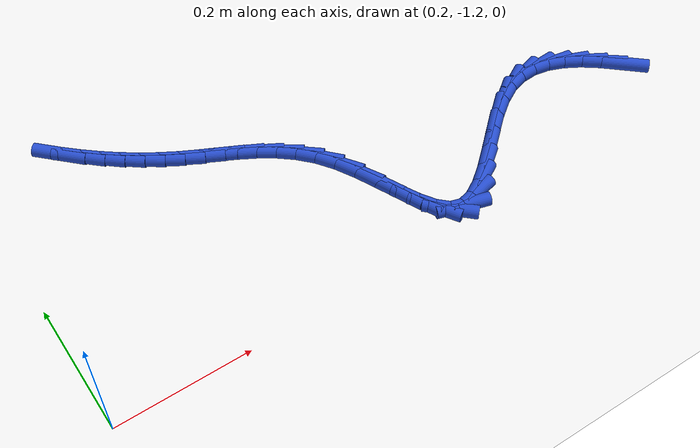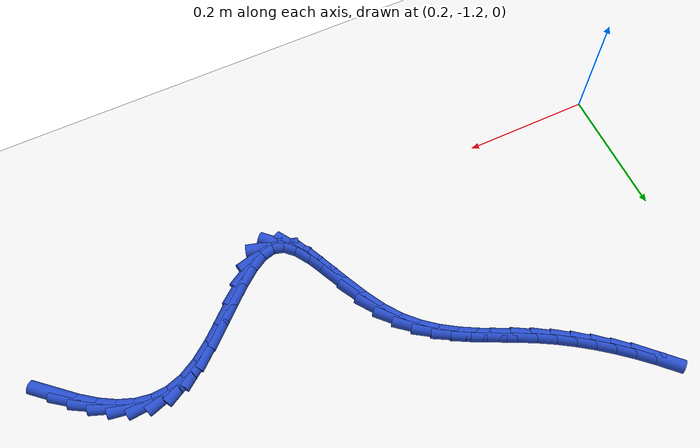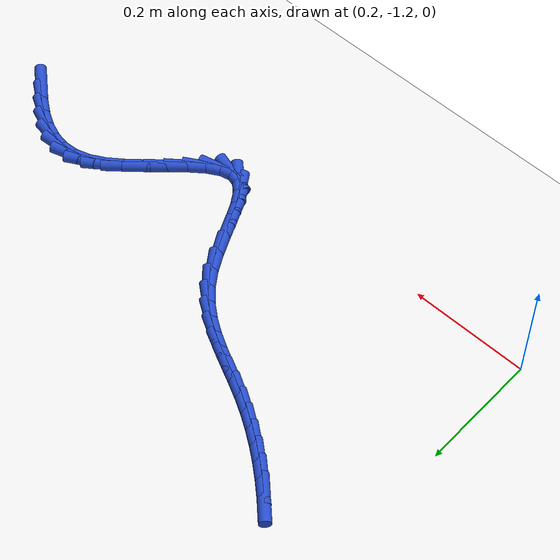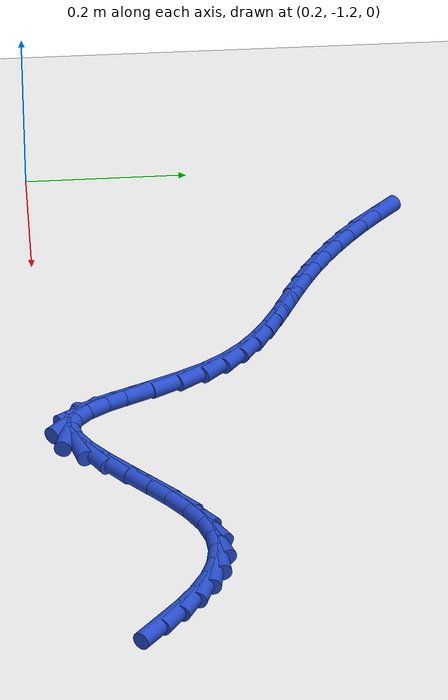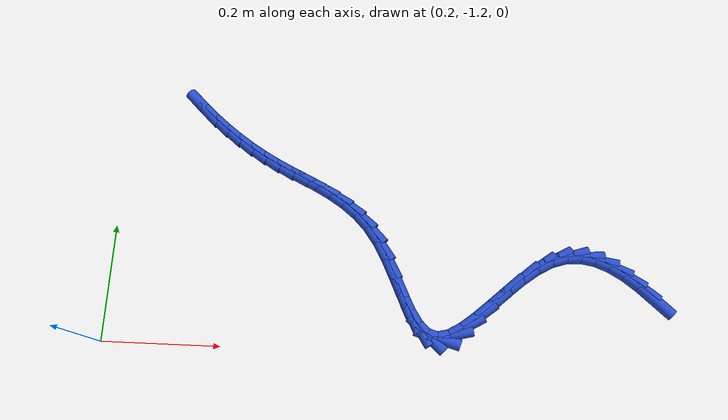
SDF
<sdf version="1.6">
 <world name="default">
  <model name="ground_plane">
   <static>1</static>
   <link name="link">
    <collision name="collision">
     <geometry><plane><normal>0 0 1</normal><size>100 100</size></plane></geometry>
     <surface><friction><ode><mu>100</mu><mu2>50</mu2></ode></friction></surface>
    </collision>
    <visual name="visual">
     <cast_shadows>0</cast_shadows>
     <geometry><plane><normal>0 0 1</normal><size>100 100</size></plane></geometry>
     <material>
      <script><uri>file://media/materials/scripts/gazebo.material</uri><name>Gazebo/WhiteGlow</name></script>
     </material>
    </visual>
   </link>
  </model>
  <model name="line">
   <link name="link_224">
    <pose>1.1205739657814175 -1.0905771799999395 0.01 0 1.57 -0.7173893721919093</pose>
    <collision name="collision">
     <geometry><cylinder><radius>0.01</radius><length>0.08</length></cylinder></geometry>
    </collision>
    <visual name="visual">
     <material>
      <script><name>Gazebo/Blue</name><uri>file://media/materials/scripts/gazebo.material</uri></script>
     </material>
     <geometry><cylinder><radius>0.01</radius><length>0.08</length></cylinder></geometry>
    </visual>
   </link>
   <link name="link_225">
    <pose>1.0965041822092247 -1.0695772664270893 0.01 0 1.57 -0.6337522375072615</pose>
    <collision name="collision">
     <geometry><cylinder><radius>0.01</radius><length>0.08</length></cylinder></geometry>
    </collision>
    <visual name="visual">
     <material>
      <script><name>Gazebo/Blue</name><uri>file://media/materials/scripts/gazebo.material</uri></script>
     </material>
     <geometry><cylinder><radius>0.01</radius><length>0.08</length></cylinder></geometry>
    </visual>
   </link>
   <link name="link_226">
    <pose>1.072501545808024 -1.0519382694715396 0.01 0 1.57 -0.518308483187557</pose>
    <collision name="collision">
     <geometry><cylinder><radius>0.01</radius><length>0.08</length></cylinder></geometry>
    </collision>
    <visual name="visual">
     <material>
      <script><name>Gazebo/Blue</name><uri>file://media/materials/scripts/gazebo.material</uri></script>
     </material>
     <geometry><cylinder><radius>0.01</radius><length>0.08</length></cylinder></geometry>
    </visual>
   </link>
   <link name="link_227">
    <pose>1.048473013497114 -1.0382343659537776 0.01 0 1.57 -0.3638197016583903</pose>
    <collision name="collision">
     <geometry><cylinder><radius>0.01</radius><length>0.08</length></cylinder></geometry>
    </collision>
    <visual name="visual">
     <material>
      <script><name>Gazebo/Blue</name><uri>file://media/materials/scripts/gazebo.material</uri></script>
     </material>
     <geometry><cylinder><radius>0.01</radius><length>0.08</length></cylinder></geometry>
    </visual>
   </link>
   <link name="link_228">
    <pose>1.0243255421957962 -1.0290397326942924 0.01 0 1.57 -0.16719610916052682</pose>
    <collision name="collision">
     <geometry><cylinder><radius>0.01</radius><length>0.08</length></cylinder></geometry>
    </collision>
    <visual name="visual">
     <material>
      <script><name>Gazebo/Blue</name><uri>file://media/materials/scripts/gazebo.material</uri></script>
     </material>
     <geometry><cylinder><radius>0.01</radius><length>0.08</length></cylinder></geometry>
    </visual>
   </link>
   <link name="link_229">
    <pose>0.9999660888233703 -1.024928546513573 0.01 0 1.57 0.0626170162381622</pose>
    <collision name="collision">
     <geometry><cylinder><radius>0.01</radius><length>0.08</length></cylinder></geometry>
    </collision>
    <visual name="visual">
     <material>
      <script><name>Gazebo/Blue</name><uri>file://media/materials/scripts/gazebo.material</uri></script>
     </material>
     <geometry><cylinder><radius>0.01</radius><length>0.08</length></cylinder></geometry>
    </visual>
   </link>
   <link name="link_230">
    <pose>0.9753016102991363 -1.0264749842321066 0.01 0 1.57 0.30092775665450744</pose>
    <collision name="collision">
     <geometry><cylinder><radius>0.01</radius><length>0.08</length></cylinder></geometry>
    </collision>
    <visual name="visual">
     <material>
      <script><name>Gazebo/Blue</name><uri>file://media/materials/scripts/gazebo.material</uri></script>
     </material>
     <geometry><cylinder><radius>0.01</radius><length>0.08</length></cylinder></geometry>
    </visual>
   </link>
   <link name="link_231">
    <pose>0.950239063542395 -1.0342532226703829 0.01 0 1.57 0.5111195704032142</pose>
    <collision name="collision">
     <geometry><cylinder><radius>0.01</radius><length>0.08</length></cylinder></geometry>
    </collision>
    <visual name="visual">
     <material>
      <script><name>Gazebo/Blue</name><uri>file://media/materials/scripts/gazebo.material</uri></script>
     </material>
     <geometry><cylinder><radius>0.01</radius><length>0.08</length></cylinder></geometry>
    </visual>
   </link>
   <link name="link_232">
    <pose>0.9247305537834789 -1.048559147478657 0.01 0 1.57 0.6456064111743888</pose>
    <collision name="collision">
     <geometry><cylinder><radius>0.01</radius><length>0.08</length></cylinder></geometry>
    </collision>
    <visual name="visual">
     <material>
      <script><name>Gazebo/Blue</name><uri>file://media/materials/scripts/gazebo.material</uri></script>
     </material>
     <geometry><cylinder><radius>0.01</radius><length>0.08</length></cylinder></geometry>
    </visual>
   </link>
   <link name="link_233">
    <pose>0.899013189605888 -1.0679319026958405 0.01 0 1.57 0.7169267695335954</pose>
    <collision name="collision">
     <geometry><cylinder><radius>0.01</radius><length>0.08</length></cylinder></geometry>
    </collision>
    <visual name="visual">
     <material>
      <script><name>Gazebo/Blue</name><uri>file://media/materials/scripts/gazebo.material</uri></script>
     </material>
     <geometry><cylinder><radius>0.01</radius><length>0.08</length></cylinder></geometry>
    </visual>
   </link>
   <link name="link_234">
    <pose>0.873434984448977 -1.0902270222453259 0.01 0 1.57 0.7434956889613187</pose>
    <collision name="collision">
     <geometry><cylinder><radius>0.01</radius><length>0.08</length></cylinder></geometry>
    </collision>
    <visual name="visual">
     <material>
      <script><name>Gazebo/Blue</name><uri>file://media/materials/scripts/gazebo.material</uri></script>
     </material>
     <geometry><cylinder><radius>0.01</radius><length>0.08</length></cylinder></geometry>
    </visual>
   </link>
   <link name="link_235">
    <pose>0.8483442006453208 -1.1132985058893459 0.01 0 1.57 0.72989773054277</pose>
    <collision name="collision">
     <geometry><cylinder><radius>0.01</radius><length>0.08</length></cylinder></geometry>
    </collision>
    <visual name="visual">
     <material>
      <script><name>Gazebo/Blue</name><uri>file://media/materials/scripts/gazebo.material</uri></script>
     </material>
     <geometry><cylinder><radius>0.01</radius><length>0.08</length></cylinder></geometry>
    </visual>
   </link>
   <link name="link_236">
    <pose>0.824089100527494 -1.1350003533901327 0.01 0 1.57 0.6675451261094545</pose>
    <collision name="collision">
     <geometry><cylinder><radius>0.01</radius><length>0.08</length></cylinder></geometry>
    </collision>
    <visual name="visual">
     <material>
      <script><name>Gazebo/Blue</name><uri>file://media/materials/scripts/gazebo.material</uri></script>
     </material>
     <geometry><cylinder><radius>0.01</radius><length>0.08</length></cylinder></geometry>
    </visual>
   </link>
   <link name="link_237">
    <pose>0.8010179464280711 -1.1531865645099202 0.01 0 1.57 0.5266942935977899</pose>
    <collision name="collision">
     <geometry><cylinder><radius>0.01</radius><length>0.08</length></cylinder></geometry>
    </collision>
    <visual name="visual">
     <material>
      <script><name>Gazebo/Blue</name><uri>file://media/materials/scripts/gazebo.material</uri></script>
     </material>
     <geometry><cylinder><radius>0.01</radius><length>0.08</length></cylinder></geometry>
    </visual>
   </link>
   <link name="link_238">
    <pose>0.7794790006796268 -1.1657111390109405 0.01 0 1.57 0.2354922465888293</pose>
    <collision name="collision">
     <geometry><cylinder><radius>0.01</radius><length>0.08</length></cylinder></geometry>
    </collision>
    <visual name="visual">
     <material>
      <script><name>Gazebo/Blue</name><uri>file://media/materials/scripts/gazebo.material</uri></script>
     </material>
     <geometry><cylinder><radius>0.01</radius><length>0.08</length></cylinder></geometry>
    </visual>
   </link>
   <link name="link_239">
    <pose>0.7598205256147356 -1.1704280766554267 0.01 0 1.57 -0.2841208104358677</pose>
    <collision name="collision">
     <geometry><cylinder><radius>0.01</radius><length>0.08</length></cylinder></geometry>
    </collision>
    <visual name="visual">
     <material>
      <script><name>Gazebo/Blue</name><uri>file://media/materials/scripts/gazebo.material</uri></script>
     </material>
     <geometry><cylinder><radius>0.01</radius><length>0.08</length></cylinder></geometry>
    </visual>
   </link>
   <link name="link_240">
    <pose>0.7423578061446159 -1.165328592465609 0.01 0 1.57 -0.7567442795565279</pose>
    <collision name="collision">
     <geometry><cylinder><radius>0.01</radius><length>0.08</length></cylinder></geometry>
    </collision>
    <visual name="visual">
     <material>
      <script><name>Gazebo/Blue</name><uri>file://media/materials/scripts/gazebo.material</uri></script>
     </material>
     <geometry><cylinder><radius>0.01</radius><length>0.08</length></cylinder></geometry>
    </visual>
   </link>
   <link name="link_241">
    <pose>0.7268564453619056 -1.150691064333088 0.01 0 1.57 -0.9968941374731002</pose>
    <collision name="collision">
     <geometry><cylinder><radius>0.01</radius><length>0.08</length></cylinder></geometry>
    </collision>
    <visual name="visual">
     <material>
      <script><name>Gazebo/Blue</name><uri>file://media/materials/scripts/gazebo.material</uri></script>
     </material>
     <geometry><cylinder><radius>0.01</radius><length>0.08</length></cylinder></geometry>
    </visual>
   </link>
   <link name="link_242">
    <pose>0.7126281542362056 -1.1286824631052748 0.01 0 1.57 -1.1048226804583463</pose>
    <collision name="collision">
     <geometry><cylinder><radius>0.01</radius><length>0.08</length></cylinder></geometry>
    </collision>
    <visual name="visual">
     <material>
      <script><name>Gazebo/Blue</name><uri>file://media/materials/scripts/gazebo.material</uri></script>
     </material>
     <geometry><cylinder><radius>0.01</radius><length>0.08</length></cylinder></geometry>
    </visual>
   </link>
   <link name="link_243">
    <pose>0.6989710447161698 -1.1015263435927352 0.01 0 1.57 -1.1410035180612035</pose>
    <collision name="collision">
     <geometry><cylinder><radius>0.01</radius><length>0.08</length></cylinder></geometry>
    </collision>
    <visual name="visual">
     <material>
      <script><name>Gazebo/Blue</name><uri>file://media/materials/scripts/gazebo.material</uri></script>
     </material>
     <geometry><cylinder><radius>0.01</radius><length>0.08</length></cylinder></geometry>
    </visual>
   </link>
   <link name="link_244">
    <pose>0.6851832287504513 -1.071446260606035 0.01 0 1.57 -1.1273565541801824</pose>
    <collision name="collision">
     <geometry><cylinder><radius>0.01</radius><length>0.08</length></cylinder></geometry>
    </collision>
    <visual name="visual">
     <material>
      <script><name>Gazebo/Blue</name><uri>file://media/materials/scripts/gazebo.material</uri></script>
     </material>
     <geometry><cylinder><radius>0.01</radius><length>0.08</length></cylinder></geometry>
    </visual>
   </link>
   <link name="link_245">
    <pose>0.6705628182877047 -1.0406657689557417 0.01 0 1.57 -1.0662921637756118</pose>
    <collision name="collision">
     <geometry><cylinder><radius>0.01</radius><length>0.08</length></cylinder></geometry>
    </collision>
    <visual name="visual">
     <material>
      <script><name>Gazebo/Blue</name><uri>file://media/materials/scripts/gazebo.material</uri></script>
     </material>
     <geometry><cylinder><radius>0.01</radius><length>0.08</length></cylinder></geometry>
    </visual>
   </link>
   <link name="link_246">
    <pose>0.6544079252765829 -1.0114084234524208 0.01 0 1.57 -0.9495274892933476</pose>
    <collision name="collision">
     <geometry><cylinder><radius>0.01</radius><length>0.08</length></cylinder></geometry>
    </collision>
    <visual name="visual">
     <material>
      <script><name>Gazebo/Blue</name><uri>file://media/materials/scripts/gazebo.material</uri></script>
     </material>
     <geometry><cylinder><radius>0.01</radius><length>0.08</length></cylinder></geometry>
    </visual>
   </link>
   <link name="link_247">
    <pose>0.6360614342191065 -0.9857786136144389 0.01 0 1.57 -0.8082761711073649</pose>
    <collision name="collision">
     <geometry><cylinder><radius>0.01</radius><length>0.08</length></cylinder></geometry>
    </collision>
    <visual name="visual">
     <material>
      <script><name>Gazebo/Blue</name><uri>file://media/materials/scripts/gazebo.material</uri></script>
     </material>
     <geometry><cylinder><radius>0.01</radius><length>0.08</length></cylinder></geometry>
    </visual>
   </link>
   <link name="link_248">
    <pose>0.6154837488858248 -0.9642371580994161 0.01 0 1.57 -0.6820723448998528</pose>
    <collision name="collision">
     <geometry><cylinder><radius>0.01</radius><length>0.08</length></cylinder></geometry>
    </collision>
    <visual name="visual">
     <material>
      <script><name>Gazebo/Blue</name><uri>file://media/materials/scripts/gazebo.material</uri></script>
     </material>
     <geometry><cylinder><radius>0.01</radius><length>0.08</length></cylinder></geometry>
    </visual>
   </link>
   <link name="link_249">
    <pose>0.5930851847749279 -0.9460474039342911 0.01 0 1.57 -0.5802800320281033</pose>
    <collision name="collision">
     <geometry><cylinder><radius>0.01</radius><length>0.08</length></cylinder></geometry>
    </collision>
    <visual name="visual">
     <material>
      <script><name>Gazebo/Blue</name><uri>file://media/materials/scripts/gazebo.material</uri></script>
     </material>
     <geometry><cylinder><radius>0.01</radius><length>0.08</length></cylinder></geometry>
    </visual>
   </link>
   <link name="link_250">
    <pose>0.5692862511859448 -0.9304455666285116 0.01 0 1.57 -0.5074595062157006</pose>
    <collision name="collision">
     <geometry><cylinder><radius>0.01</radius><length>0.08</length></cylinder></geometry>
    </collision>
    <visual name="visual">
     <material>
      <script><name>Gazebo/Blue</name><uri>file://media/materials/scripts/gazebo.material</uri></script>
     </material>
     <geometry><cylinder><radius>0.01</radius><length>0.08</length></cylinder></geometry>
    </visual>
   </link>
   <link name="link_251">
    <pose>0.5445074574184033 -0.9166678616915247 0.01 0 1.57 -0.4651709382582778</pose>
    <collision name="collision">
     <geometry><cylinder><radius>0.01</radius><length>0.08</length></cylinder></geometry>
    </collision>
    <visual name="visual">
     <material>
      <script><name>Gazebo/Blue</name><uri>file://media/materials/scripts/gazebo.material</uri></script>
     </material>
     <geometry><cylinder><radius>0.01</radius><length>0.08</length></cylinder></geometry>
    </visual>
   </link>
   <link name="link_252">
    <pose>0.5191693127718312 -0.903950504632777 0.01 0 1.57 -0.4536218900336322</pose>
    <collision name="collision">
     <geometry><cylinder><radius>0.01</radius><length>0.08</length></cylinder></geometry>
    </collision>
    <visual name="visual">
     <material>
      <script><name>Gazebo/Blue</name><uri>file://media/materials/scripts/gazebo.material</uri></script>
     </material>
     <geometry><cylinder><radius>0.01</radius><length>0.08</length></cylinder></geometry>
    </visual>
   </link>
   <link name="link_253">
    <pose>0.4936923265457567 -0.8915297109617161 0.01 0 1.57 -0.4728243951173227</pose>
    <collision name="collision">
     <geometry><cylinder><radius>0.01</radius><length>0.08</length></cylinder></geometry>
    </collision>
    <visual name="visual">
     <material>
      <script><name>Gazebo/Blue</name><uri>file://media/materials/scripts/gazebo.material</uri></script>
     </material>
     <geometry><cylinder><radius>0.01</radius><length>0.08</length></cylinder></geometry>
    </visual>
   </link>
   <link name="link_254">
    <pose>0.4684970080217003 -0.8786416962224373 0.01 0 1.57 -0.5173697534663058</pose>
    <collision name="collision">
     <geometry><cylinder><radius>0.01</radius><length>0.08</length></cylinder></geometry>
    </collision>
    <visual name="visual">
     <material>
      <script><name>Gazebo/Blue</name><uri>file://media/materials/scripts/gazebo.material</uri></script>
     </material>
     <geometry><cylinder><radius>0.01</radius><length>0.08</length></cylinder></geometry>
    </visual>
   </link>
   <link name="link_255">
    <pose>0.44393143169415633 -0.8646620516466228 0.01 0 1.57 -0.5654567829459335</pose>
    <collision name="collision">
     <geometry><cylinder><radius>0.01</radius><length>0.08</length></cylinder></geometry>
    </collision>
    <visual name="visual">
     <material>
      <script><name>Gazebo/Blue</name><uri>file://media/materials/scripts/gazebo.material</uri></script>
     </material>
     <geometry><cylinder><radius>0.01</radius><length>0.08</length></cylinder></geometry>
    </visual>
   </link>
   <link name="link_256">
    <pose>0.4200593808445938 -0.8495133885500441 0.01 0 1.57 -0.6116445242595093</pose>
    <collision name="collision">
     <geometry><cylinder><radius>0.01</radius><length>0.08</length></cylinder></geometry>
    </collision>
    <visual name="visual">
     <material>
      <script><name>Gazebo/Blue</name><uri>file://media/materials/scripts/gazebo.material</uri></script>
     </material>
     <geometry><cylinder><radius>0.01</radius><length>0.08</length></cylinder></geometry>
    </visual>
   </link>
   <link name="link_257">
    <pose>0.3968749024215213 -0.8332525016947853 0.01 0 1.57 -0.6558749595762801</pose>
    <collision name="collision">
     <geometry><cylinder><radius>0.01</radius><length>0.08</length></cylinder></geometry>
    </collision>
    <visual name="visual">
     <material>
      <script><name>Gazebo/Blue</name><uri>file://media/materials/scripts/gazebo.material</uri></script>
     </material>
     <geometry><cylinder><radius>0.01</radius><length>0.08</length></cylinder></geometry>
    </visual>
   </link>
   <link name="link_258">
    <pose>0.37437204337344776 -0.8159361858429307 0.01 0 1.57 -0.6981252677616858</pose>
    <collision name="collision">
     <geometry><cylinder><radius>0.01</radius><length>0.08</length></cylinder></geometry>
    </collision>
    <visual name="visual">
     <material>
      <script><name>Gazebo/Blue</name><uri>file://media/materials/scripts/gazebo.material</uri></script>
     </material>
     <geometry><cylinder><radius>0.01</radius><length>0.08</length></cylinder></geometry>
    </visual>
   </link>
   <link name="link_259">
    <pose>0.35254485064888164 -0.797621235756564 0.01 0 1.57 -0.7384026230004564</pose>
    <collision name="collision">
     <geometry><cylinder><radius>0.01</radius><length>0.08</length></cylinder></geometry>
    </collision>
    <visual name="visual">
     <material>
      <script><name>Gazebo/Blue</name><uri>file://media/materials/scripts/gazebo.material</uri></script>
     </material>
     <geometry><cylinder><radius>0.01</radius><length>0.08</length></cylinder></geometry>
    </visual>
   </link>
   <link name="link_260">
    <pose>0.3313873711963317 -0.7783644461977688 0.01 0 1.57 -0.7767388456989658</pose>
    <collision name="collision">
     <geometry><cylinder><radius>0.01</radius><length>0.08</length></cylinder></geometry>
    </collision>
    <visual name="visual">
     <material>
      <script><name>Gazebo/Blue</name><uri>file://media/materials/scripts/gazebo.material</uri></script>
     </material>
     <geometry><cylinder><radius>0.01</radius><length>0.08</length></cylinder></geometry>
    </visual>
   </link>
  </model>
 </world>
</sdf>
